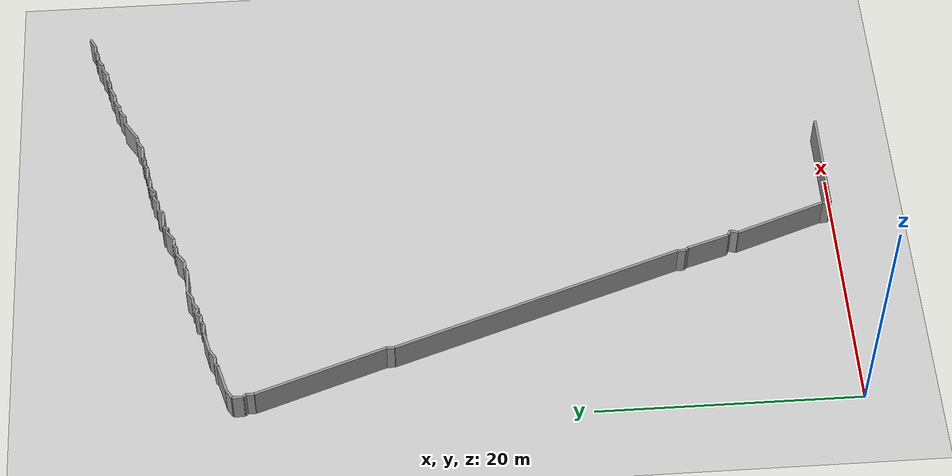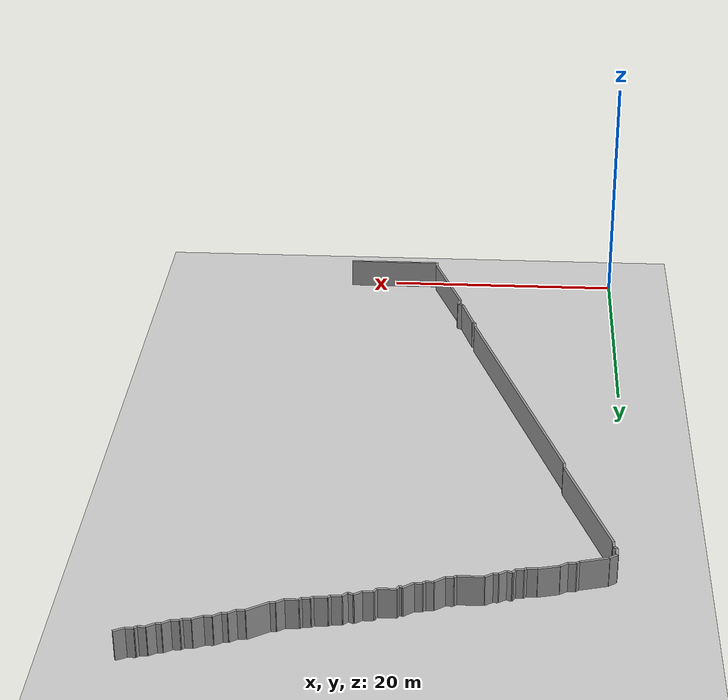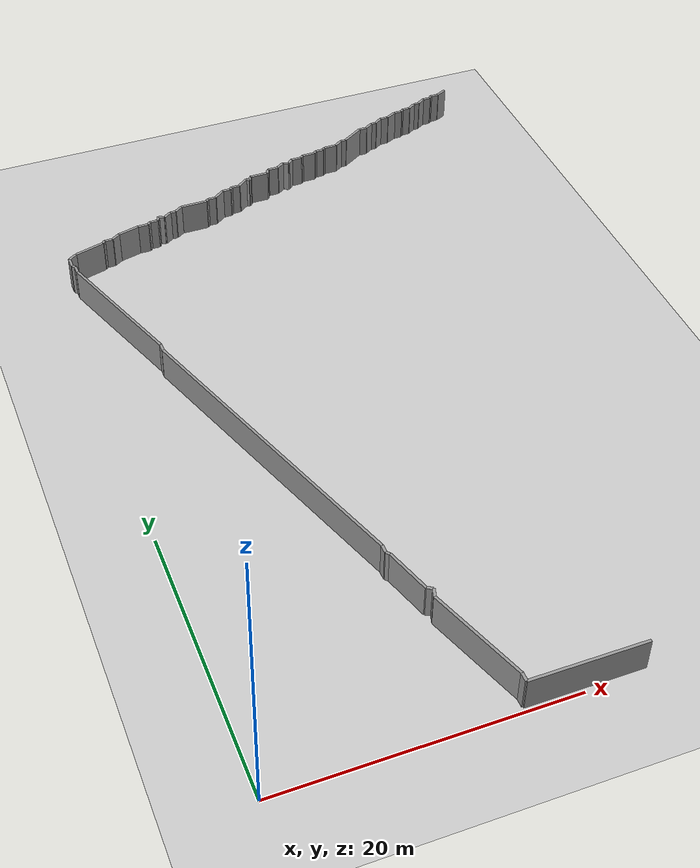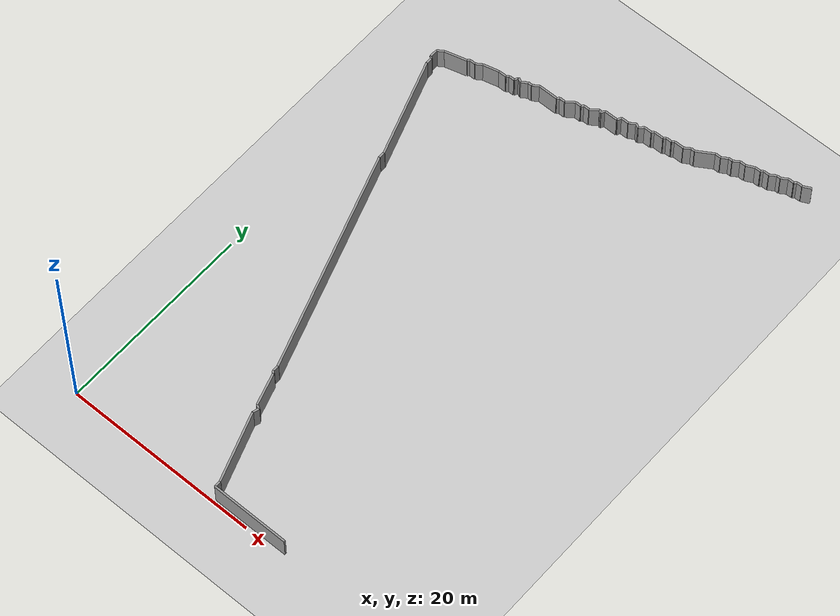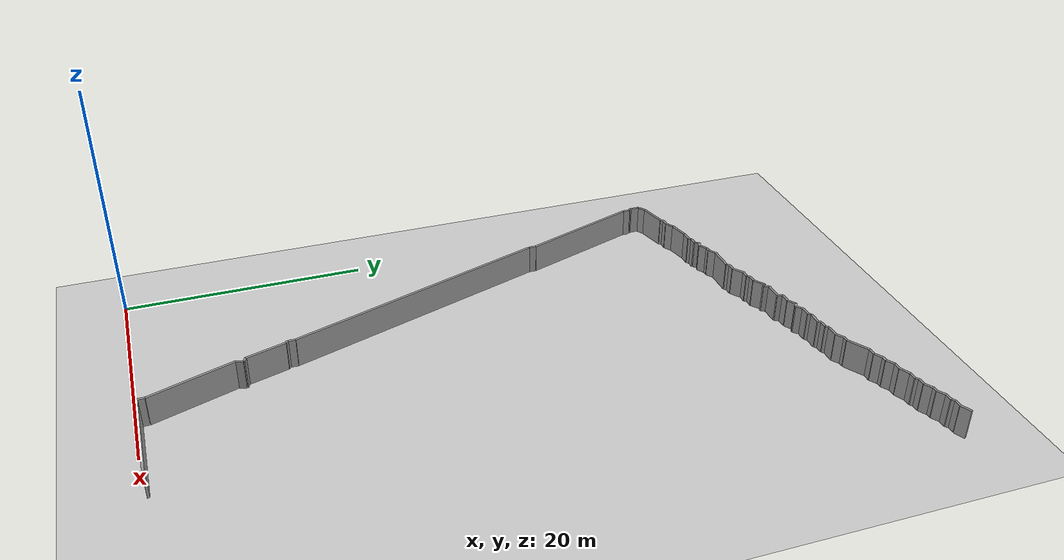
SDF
<sdf version="1.4">
 <world name="1_wall">
  <model name="ground_plane">
   <static>1</static>
   <link name="link">
    <collision name="collision">
     <geometry><plane><normal>0 0 1</normal><size>1000 1000</size></plane></geometry>
     <surface><friction><ode><mu>100</mu><mu2>50</mu2></ode></friction></surface>
    </collision>
    <visual name="visual">
     <cast_shadows>0</cast_shadows>
     <geometry><plane><normal>0 0 1</normal><size>10000 10000</size></plane></geometry>
     <material>
      <script><uri>file://media/materials/scripts/gazebo.material</uri><name>Gazebo/Grey</name></script>
     </material>
    </visual>
    <velocity_decay><linear>0</linear><angular>0</angular></velocity_decay>
   </link>
  </model>
  <model name="Wall_0">
   <static>1</static>
   <link name="Wall_0">
    <collision name="Wall_Collision_0">
     <geometry><box><size>8.0 0.2 2.5</size></box></geometry>
     <pose>0 0 1.25 0 -0 0</pose>
    </collision>
    <visual name="Wall_Visual_0">
     <pose>0 0 1.25 0 -0 0</pose>
     <geometry><box><size>8.0 0.2 2.5</size></box></geometry>
     <material>
      <script><uri>file://media/materials/scripts/gazebo.material</uri><name>Gazebo/Grey</name></script>
     </material>
    </visual>
    <velocity_decay><linear>0</linear><angular>0</angular></velocity_decay>
    <pose>20.2 0.4 0 0 0 3.14159265359</pose>
   </link>
  </model>
  <model name="Wall_1">
   <static>1</static>
   <link name="Wall_1">
    <collision name="Wall_Collision_1">
     <geometry><box><size>0.6 0.2 2.5</size></box></geometry>
     <pose>0 0 1.25 0 -0 0</pose>
    </collision>
    <visual name="Wall_Visual_1">
     <pose>0 0 1.25 0 -0 0</pose>
     <geometry><box><size>0.6 0.2 2.5</size></box></geometry>
     <material>
      <script><uri>file://media/materials/scripts/gazebo.material</uri><name>Gazebo/Grey</name></script>
     </material>
    </visual>
    <velocity_decay><linear>0</linear><angular>0</angular></velocity_decay>
    <pose>16.2 0.7 0 0 0 1.57079632679</pose>
   </link>
  </model>
  <model name="Wall_2">
   <static>1</static>
   <link name="Wall_2">
    <collision name="Wall_Collision_2">
     <geometry><box><size>7.21110255093 0.2 2.5</size></box></geometry>
     <pose>0 0 1.25 0 -0 0</pose>
    </collision>
    <visual name="Wall_Visual_2">
     <pose>0 0 1.25 0 -0 0</pose>
     <geometry><box><size>7.21110255093 0.2 2.5</size></box></geometry>
     <material>
      <script><uri>file://media/materials/scripts/gazebo.material</uri><name>Gazebo/Grey</name></script>
     </material>
    </visual>
    <velocity_decay><linear>0</linear><angular>0</angular></velocity_decay>
    <pose>15.0 4.4 0 0 0 1.91008894125</pose>
   </link>
  </model>
  <model name="Wall_3">
   <static>1</static>
   <link name="Wall_3">
    <collision name="Wall_Collision_3">
     <geometry><box><size>0.632455532034 0.2 2.5</size></box></geometry>
     <pose>0 0 1.25 0 -0 0</pose>
    </collision>
    <visual name="Wall_Visual_3">
     <pose>0 0 1.25 0 -0 0</pose>
     <geometry><box><size>0.632455532034 0.2 2.5</size></box></geometry>
     <material>
      <script><uri>file://media/materials/scripts/gazebo.material</uri><name>Gazebo/Grey</name></script>
     </material>
    </visual>
    <velocity_decay><linear>0</linear><angular>0</angular></velocity_decay>
    <pose>13.9 8.1 0 0 0 1.2490457724</pose>
   </link>
  </model>
  <model name="Wall_4">
   <static>1</static>
   <link name="Wall_4">
    <collision name="Wall_Collision_4">
     <geometry><box><size>0.4472135955 0.2 2.5</size></box></geometry>
     <pose>0 0 1.25 0 -0 0</pose>
    </collision>
    <visual name="Wall_Visual_4">
     <pose>0 0 1.25 0 -0 0</pose>
     <geometry><box><size>0.4472135955 0.2 2.5</size></box></geometry>
     <material>
      <script><uri>file://media/materials/scripts/gazebo.material</uri><name>Gazebo/Grey</name></script>
     </material>
    </visual>
    <velocity_decay><linear>0</linear><angular>0</angular></velocity_decay>
    <pose>13.8 8.5 0 0 0 2.67794504459</pose>
   </link>
  </model>
  <model name="Wall_5">
   <static>1</static>
   <link name="Wall_5">
    <collision name="Wall_Collision_5">
     <geometry><box><size>3.35261092285 0.2 2.5</size></box></geometry>
     <pose>0 0 1.25 0 -0 0</pose>
    </collision>
    <visual name="Wall_Visual_5">
     <pose>0 0 1.25 0 -0 0</pose>
     <geometry><box><size>3.35261092285 0.2 2.5</size></box></geometry>
     <material>
      <script><uri>file://media/materials/scripts/gazebo.material</uri><name>Gazebo/Grey</name></script>
     </material>
    </visual>
    <velocity_decay><linear>0</linear><angular>0</angular></velocity_decay>
    <pose>13.1 10.2 0 0 0 1.87368119517</pose>
   </link>
  </model>
  <model name="Wall_6">
   <static>1</static>
   <link name="Wall_6">
    <collision name="Wall_Collision_6">
     <geometry><box><size>0.282842712475 0.2 2.5</size></box></geometry>
     <pose>0 0 1.25 0 -0 0</pose>
    </collision>
    <visual name="Wall_Visual_6">
     <pose>0 0 1.25 0 -0 0</pose>
     <geometry><box><size>0.282842712475 0.2 2.5</size></box></geometry>
     <material>
      <script><uri>file://media/materials/scripts/gazebo.material</uri><name>Gazebo/Grey</name></script>
     </material>
    </visual>
    <velocity_decay><linear>0</linear><angular>0</angular></velocity_decay>
    <pose>12.5 11.9 0 0 0 2.35619449019</pose>
   </link>
  </model>
  <model name="Wall_7">
   <static>1</static>
   <link name="Wall_7">
    <collision name="Wall_Collision_7">
     <geometry><box><size>0.6 0.2 2.5</size></box></geometry>
     <pose>0 0 1.25 0 -0 0</pose>
    </collision>
    <visual name="Wall_Visual_7">
     <pose>0 0 1.25 0 -0 0</pose>
     <geometry><box><size>0.6 0.2 2.5</size></box></geometry>
     <material>
      <script><uri>file://media/materials/scripts/gazebo.material</uri><name>Gazebo/Grey</name></script>
     </material>
    </visual>
    <velocity_decay><linear>0</linear><angular>0</angular></velocity_decay>
    <pose>12.4 12.3 0 0 0 1.57079632679</pose>
   </link>
  </model>
  <model name="Wall_8">
   <static>1</static>
   <link name="Wall_8">
    <collision name="Wall_Collision_8">
     <geometry><box><size>23.0217288664 0.2 2.5</size></box></geometry>
     <pose>0 0 1.25 0 -0 0</pose>
    </collision>
    <visual name="Wall_Visual_8">
     <pose>0 0 1.25 0 -0 0</pose>
     <geometry><box><size>23.0217288664 0.2 2.5</size></box></geometry>
     <material>
      <script><uri>file://media/materials/scripts/gazebo.material</uri><name>Gazebo/Grey</name></script>
     </material>
    </visual>
    <velocity_decay><linear>0</linear><angular>0</angular></velocity_decay>
    <pose>8.7 23.5 0 0 0 1.89804133139</pose>
   </link>
  </model>
  <model name="Wall_9">
   <static>1</static>
   <link name="Wall_9">
    <collision name="Wall_Collision_9">
     <geometry><box><size>0.6 0.2 2.5</size></box></geometry>
     <pose>0 0 1.25 0 -0 0</pose>
    </collision>
    <visual name="Wall_Visual_9">
     <pose>0 0 1.25 0 -0 0</pose>
     <geometry><box><size>0.6 0.2 2.5</size></box></geometry>
     <material>
      <script><uri>file://media/materials/scripts/gazebo.material</uri><name>Gazebo/Grey</name></script>
     </material>
    </visual>
    <velocity_decay><linear>0</linear><angular>0</angular></velocity_decay>
    <pose>5.0 34.7 0 0 0 1.57079632679</pose>
   </link>
  </model>
  <model name="Wall_10">
   <static>1</static>
   <link name="Wall_10">
    <collision name="Wall_Collision_10">
     <geometry><box><size>10.3730419839 0.2 2.5</size></box></geometry>
     <pose>0 0 1.25 0 -0 0</pose>
    </collision>
    <visual name="Wall_Visual_10">
     <pose>0 0 1.25 0 -0 0</pose>
     <geometry><box><size>10.3730419839 0.2 2.5</size></box></geometry>
     <material>
      <script><uri>file://media/materials/scripts/gazebo.material</uri><name>Gazebo/Grey</name></script>
     </material>
    </visual>
    <velocity_decay><linear>0</linear><angular>0</angular></velocity_decay>
    <pose>3.3 39.9 0 0 0 1.90474139864</pose>
   </link>
  </model>
  <model name="Wall_11">
   <static>1</static>
   <link name="Wall_11">
    <collision name="Wall_Collision_11">
     <geometry><box><size>0.6 0.2 2.5</size></box></geometry>
     <pose>0 0 1.25 0 -0 0</pose>
    </collision>
    <visual name="Wall_Visual_11">
     <pose>0 0 1.25 0 -0 0</pose>
     <geometry><box><size>0.6 0.2 2.5</size></box></geometry>
     <material>
      <script><uri>file://media/materials/scripts/gazebo.material</uri><name>Gazebo/Grey</name></script>
     </material>
    </visual>
    <velocity_decay><linear>0</linear><angular>0</angular></velocity_decay>
    <pose>1.6 45.1 0 0 0 1.57079632679</pose>
   </link>
  </model>
  <model name="Wall_12">
   <static>1</static>
   <link name="Wall_12">
    <collision name="Wall_Collision_12">
     <geometry><box><size>0.282842712475 0.2 2.5</size></box></geometry>
     <pose>0 0 1.25 0 -0 0</pose>
    </collision>
    <visual name="Wall_Visual_12">
     <pose>0 0 1.25 0 -0 0</pose>
     <geometry><box><size>0.282842712475 0.2 2.5</size></box></geometry>
     <material>
      <script><uri>file://media/materials/scripts/gazebo.material</uri><name>Gazebo/Grey</name></script>
     </material>
    </visual>
    <velocity_decay><linear>0</linear><angular>0</angular></velocity_decay>
    <pose>1.5 45.5 0 0 0 2.35619449019</pose>
   </link>
  </model>
  <model name="Wall_13">
   <static>1</static>
   <link name="Wall_13">
    <collision name="Wall_Collision_13">
     <geometry><box><size>0.8 0.2 2.5</size></box></geometry>
     <pose>0 0 1.25 0 -0 0</pose>
    </collision>
    <visual name="Wall_Visual_13">
     <pose>0 0 1.25 0 -0 0</pose>
     <geometry><box><size>0.8 0.2 2.5</size></box></geometry>
     <material>
      <script><uri>file://media/materials/scripts/gazebo.material</uri><name>Gazebo/Grey</name></script>
     </material>
    </visual>
    <velocity_decay><linear>0</linear><angular>0</angular></velocity_decay>
    <pose>1.4 46.0 0 0 0 1.57079632679</pose>
   </link>
  </model>
  <model name="Wall_14">
   <static>1</static>
   <link name="Wall_14">
    <collision name="Wall_Collision_14">
     <geometry><box><size>0.721110255093 0.2 2.5</size></box></geometry>
     <pose>0 0 1.25 0 -0 0</pose>
    </collision>
    <visual name="Wall_Visual_14">
     <pose>0 0 1.25 0 -0 0</pose>
     <geometry><box><size>0.721110255093 0.2 2.5</size></box></geometry>
     <material>
      <script><uri>file://media/materials/scripts/gazebo.material</uri><name>Gazebo/Grey</name></script>
     </material>
    </visual>
    <velocity_decay><linear>0</linear><angular>0</angular></velocity_decay>
    <pose>1.7 46.6 0 0 0 0.588002603548</pose>
   </link>
  </model>
  <model name="Wall_15">
   <static>1</static>
   <link name="Wall_15">
    <collision name="Wall_Collision_15">
     <geometry><box><size>2.2803508502 0.2 2.5</size></box></geometry>
     <pose>0 0 1.25 0 -0 0</pose>
    </collision>
    <visual name="Wall_Visual_15">
     <pose>0 0 1.25 0 -0 0</pose>
     <geometry><box><size>2.2803508502 0.2 2.5</size></box></geometry>
     <material>
      <script><uri>file://media/materials/scripts/gazebo.material</uri><name>Gazebo/Grey</name></script>
     </material>
    </visual>
    <velocity_decay><linear>0</linear><angular>0</angular></velocity_decay>
    <pose>3.1 47.1 0 0 0 0.266252049151</pose>
   </link>
  </model>
  <model name="Wall_16">
   <static>1</static>
   <link name="Wall_16">
    <collision name="Wall_Collision_16">
     <geometry><box><size>0.282842712475 0.2 2.5</size></box></geometry>
     <pose>0 0 1.25 0 -0 0</pose>
    </collision>
    <visual name="Wall_Visual_16">
     <pose>0 0 1.25 0 -0 0</pose>
     <geometry><box><size>0.282842712475 0.2 2.5</size></box></geometry>
     <material>
      <script><uri>file://media/materials/scripts/gazebo.material</uri><name>Gazebo/Grey</name></script>
     </material>
    </visual>
    <velocity_decay><linear>0</linear><angular>0</angular></velocity_decay>
    <pose>4.3 47.5 0 0 0 0.785398163397</pose>
   </link>
  </model>
  <model name="Wall_17">
   <static>1</static>
   <link name="Wall_17">
    <collision name="Wall_Collision_17">
     <geometry><box><size>0.6 0.2 2.5</size></box></geometry>
     <pose>0 0 1.25 0 -0 0</pose>
    </collision>
    <visual name="Wall_Visual_17">
     <pose>0 0 1.25 0 -0 0</pose>
     <geometry><box><size>0.6 0.2 2.5</size></box></geometry>
     <material>
      <script><uri>file://media/materials/scripts/gazebo.material</uri><name>Gazebo/Grey</name></script>
     </material>
    </visual>
    <velocity_decay><linear>0</linear><angular>0</angular></velocity_decay>
    <pose>4.7 47.6 0 0 0 0.0</pose>
   </link>
  </model>
  <model name="Wall_18">
   <static>1</static>
   <link name="Wall_18">
    <collision name="Wall_Collision_18">
     <geometry><box><size>0.721110255093 0.2 2.5</size></box></geometry>
     <pose>0 0 1.25 0 -0 0</pose>
    </collision>
    <visual name="Wall_Visual_18">
     <pose>0 0 1.25 0 -0 0</pose>
     <geometry><box><size>0.721110255093 0.2 2.5</size></box></geometry>
     <material>
      <script><uri>file://media/materials/scripts/gazebo.material</uri><name>Gazebo/Grey</name></script>
     </material>
    </visual>
    <velocity_decay><linear>0</linear><angular>0</angular></velocity_decay>
    <pose>5.3 47.8 0 0 0 0.588002603548</pose>
   </link>
  </model>
  <model name="Wall_19">
   <static>1</static>
   <link name="Wall_19">
    <collision name="Wall_Collision_19">
     <geometry><box><size>1.64924225025 0.2 2.5</size></box></geometry>
     <pose>0 0 1.25 0 -0 0</pose>
    </collision>
    <visual name="Wall_Visual_19">
     <pose>0 0 1.25 0 -0 0</pose>
     <geometry><box><size>1.64924225025 0.2 2.5</size></box></geometry>
     <material>
      <script><uri>file://media/materials/scripts/gazebo.material</uri><name>Gazebo/Grey</name></script>
     </material>
    </visual>
    <velocity_decay><linear>0</linear><angular>0</angular></velocity_decay>
    <pose>6.4 48.2 0 0 0 0.244978663127</pose>
   </link>
  </model>
  <model name="Wall_20">
   <static>1</static>
   <link name="Wall_20">
    <collision name="Wall_Collision_20">
     <geometry><box><size>0.8 0.2 2.5</size></box></geometry>
     <pose>0 0 1.25 0 -0 0</pose>
    </collision>
    <visual name="Wall_Visual_20">
     <pose>0 0 1.25 0 -0 0</pose>
     <geometry><box><size>0.8 0.2 2.5</size></box></geometry>
     <material>
      <script><uri>file://media/materials/scripts/gazebo.material</uri><name>Gazebo/Grey</name></script>
     </material>
    </visual>
    <velocity_decay><linear>0</linear><angular>0</angular></velocity_decay>
    <pose>7.6 48.4 0 0 0 0.0</pose>
   </link>
  </model>
  <model name="Wall_21">
   <static>1</static>
   <link name="Wall_21">
    <collision name="Wall_Collision_21">
     <geometry><box><size>0.282842712475 0.2 2.5</size></box></geometry>
     <pose>0 0 1.25 0 -0 0</pose>
    </collision>
    <visual name="Wall_Visual_21">
     <pose>0 0 1.25 0 -0 0</pose>
     <geometry><box><size>0.282842712475 0.2 2.5</size></box></geometry>
     <material>
      <script><uri>file://media/materials/scripts/gazebo.material</uri><name>Gazebo/Grey</name></script>
     </material>
    </visual>
    <velocity_decay><linear>0</linear><angular>0</angular></velocity_decay>
    <pose>8.1 48.5 0 0 0 0.785398163397</pose>
   </link>
  </model>
  <model name="Wall_22">
   <static>1</static>
   <link name="Wall_22">
    <collision name="Wall_Collision_22">
     <geometry><box><size>0.6 0.2 2.5</size></box></geometry>
     <pose>0 0 1.25 0 -0 0</pose>
    </collision>
    <visual name="Wall_Visual_22">
     <pose>0 0 1.25 0 -0 0</pose>
     <geometry><box><size>0.6 0.2 2.5</size></box></geometry>
     <material>
      <script><uri>file://media/materials/scripts/gazebo.material</uri><name>Gazebo/Grey</name></script>
     </material>
    </visual>
    <velocity_decay><linear>0</linear><angular>0</angular></velocity_decay>
    <pose>8.5 48.6 0 0 0 0.0</pose>
   </link>
  </model>
  <model name="Wall_23">
   <static>1</static>
   <link name="Wall_23">
    <collision name="Wall_Collision_23">
     <geometry><box><size>0.4472135955 0.2 2.5</size></box></geometry>
     <pose>0 0 1.25 0 -0 0</pose>
    </collision>
    <visual name="Wall_Visual_23">
     <pose>0 0 1.25 0 -0 0</pose>
     <geometry><box><size>0.4472135955 0.2 2.5</size></box></geometry>
     <material>
      <script><uri>file://media/materials/scripts/gazebo.material</uri><name>Gazebo/Grey</name></script>
     </material>
    </visual>
    <velocity_decay><linear>0</linear><angular>0</angular></velocity_decay>
    <pose>8.9 48.8 0 0 0 1.10714871779</pose>
   </link>
  </model>
  <model name="Wall_24">
   <static>1</static>
   <link name="Wall_24">
    <collision name="Wall_Collision_24">
     <geometry><box><size>0.4472135955 0.2 2.5</size></box></geometry>
     <pose>0 0 1.25 0 -0 0</pose>
    </collision>
    <visual name="Wall_Visual_24">
     <pose>0 0 1.25 0 -0 0</pose>
     <geometry><box><size>0.4472135955 0.2 2.5</size></box></geometry>
     <material>
      <script><uri>file://media/materials/scripts/gazebo.material</uri><name>Gazebo/Grey</name></script>
     </material>
    </visual>
    <velocity_decay><linear>0</linear><angular>0</angular></velocity_decay>
    <pose>9.2 48.9 0 0 0 -0.463647609001</pose>
   </link>
  </model>
  <model name="Wall_25">
   <static>1</static>
   <link name="Wall_25">
    <collision name="Wall_Collision_25">
     <geometry><box><size>0.721110255093 0.2 2.5</size></box></geometry>
     <pose>0 0 1.25 0 -0 0</pose>
    </collision>
    <visual name="Wall_Visual_25">
     <pose>0 0 1.25 0 -0 0</pose>
     <geometry><box><size>0.721110255093 0.2 2.5</size></box></geometry>
     <material>
      <script><uri>file://media/materials/scripts/gazebo.material</uri><name>Gazebo/Grey</name></script>
     </material>
    </visual>
    <velocity_decay><linear>0</linear><angular>0</angular></velocity_decay>
    <pose>9.7 49.0 0 0 0 0.588002603548</pose>
   </link>
  </model>
  <model name="Wall_26">
   <static>1</static>
   <link name="Wall_26">
    <collision name="Wall_Collision_26">
     <geometry><box><size>0.4 0.2 2.5</size></box></geometry>
     <pose>0 0 1.25 0 -0 0</pose>
    </collision>
    <visual name="Wall_Visual_26">
     <pose>0 0 1.25 0 -0 0</pose>
     <geometry><box><size>0.4 0.2 2.5</size></box></geometry>
     <material>
      <script><uri>file://media/materials/scripts/gazebo.material</uri><name>Gazebo/Grey</name></script>
     </material>
    </visual>
    <velocity_decay><linear>0</linear><angular>0</angular></velocity_decay>
    <pose>10.2 49.2 0 0 0 0.0</pose>
   </link>
  </model>
  <model name="Wall_27">
   <static>1</static>
   <link name="Wall_27">
    <collision name="Wall_Collision_27">
     <geometry><box><size>0.721110255093 0.2 2.5</size></box></geometry>
     <pose>0 0 1.25 0 -0 0</pose>
    </collision>
    <visual name="Wall_Visual_27">
     <pose>0 0 1.25 0 -0 0</pose>
     <geometry><box><size>0.721110255093 0.2 2.5</size></box></geometry>
     <material>
      <script><uri>file://media/materials/scripts/gazebo.material</uri><name>Gazebo/Grey</name></script>
     </material>
    </visual>
    <velocity_decay><linear>0</linear><angular>0</angular></velocity_decay>
    <pose>10.7 49.4 0 0 0 0.588002603548</pose>
   </link>
  </model>
  <model name="Wall_28">
   <static>1</static>
   <link name="Wall_28">
    <collision name="Wall_Collision_28">
     <geometry><box><size>2.0 0.2 2.5</size></box></geometry>
     <pose>0 0 1.25 0 -0 0</pose>
    </collision>
    <visual name="Wall_Visual_28">
     <pose>0 0 1.25 0 -0 0</pose>
     <geometry><box><size>2.0 0.2 2.5</size></box></geometry>
     <material>
      <script><uri>file://media/materials/scripts/gazebo.material</uri><name>Gazebo/Grey</name></script>
     </material>
    </visual>
    <velocity_decay><linear>0</linear><angular>0</angular></velocity_decay>
    <pose>12.0 49.6 0 0 0 0.0</pose>
   </link>
  </model>
  <model name="Wall_29">
   <static>1</static>
   <link name="Wall_29">
    <collision name="Wall_Collision_29">
     <geometry><box><size>0.282842712475 0.2 2.5</size></box></geometry>
     <pose>0 0 1.25 0 -0 0</pose>
    </collision>
    <visual name="Wall_Visual_29">
     <pose>0 0 1.25 0 -0 0</pose>
     <geometry><box><size>0.282842712475 0.2 2.5</size></box></geometry>
     <material>
      <script><uri>file://media/materials/scripts/gazebo.material</uri><name>Gazebo/Grey</name></script>
     </material>
    </visual>
    <velocity_decay><linear>0</linear><angular>0</angular></velocity_decay>
    <pose>13.1 49.7 0 0 0 0.785398163397</pose>
   </link>
  </model>
  <model name="Wall_30">
   <static>1</static>
   <link name="Wall_30">
    <collision name="Wall_Collision_30">
     <geometry><box><size>0.6 0.2 2.5</size></box></geometry>
     <pose>0 0 1.25 0 -0 0</pose>
    </collision>
    <visual name="Wall_Visual_30">
     <pose>0 0 1.25 0 -0 0</pose>
     <geometry><box><size>0.6 0.2 2.5</size></box></geometry>
     <material>
      <script><uri>file://media/materials/scripts/gazebo.material</uri><name>Gazebo/Grey</name></script>
     </material>
    </visual>
    <velocity_decay><linear>0</linear><angular>0</angular></velocity_decay>
    <pose>13.5 49.8 0 0 0 0.0</pose>
   </link>
  </model>
  <model name="Wall_31">
   <static>1</static>
   <link name="Wall_31">
    <collision name="Wall_Collision_31">
     <geometry><box><size>1.0 0.2 2.5</size></box></geometry>
     <pose>0 0 1.25 0 -0 0</pose>
    </collision>
    <visual name="Wall_Visual_31">
     <pose>0 0 1.25 0 -0 0</pose>
     <geometry><box><size>1.0 0.2 2.5</size></box></geometry>
     <material>
      <script><uri>file://media/materials/scripts/gazebo.material</uri><name>Gazebo/Grey</name></script>
     </material>
    </visual>
    <velocity_decay><linear>0</linear><angular>0</angular></velocity_decay>
    <pose>14.2 50.1 0 0 0 0.643501108793</pose>
   </link>
  </model>
  <model name="Wall_32">
   <static>1</static>
   <link name="Wall_32">
    <collision name="Wall_Collision_32">
     <geometry><box><size>0.6 0.2 2.5</size></box></geometry>
     <pose>0 0 1.25 0 -0 0</pose>
    </collision>
    <visual name="Wall_Visual_32">
     <pose>0 0 1.25 0 -0 0</pose>
     <geometry><box><size>0.6 0.2 2.5</size></box></geometry>
     <material>
      <script><uri>file://media/materials/scripts/gazebo.material</uri><name>Gazebo/Grey</name></script>
     </material>
    </visual>
    <velocity_decay><linear>0</linear><angular>0</angular></velocity_decay>
    <pose>14.9 50.4 0 0 0 0.0</pose>
   </link>
  </model>
  <model name="Wall_33">
   <static>1</static>
   <link name="Wall_33">
    <collision name="Wall_Collision_33">
     <geometry><box><size>0.282842712475 0.2 2.5</size></box></geometry>
     <pose>0 0 1.25 0 -0 0</pose>
    </collision>
    <visual name="Wall_Visual_33">
     <pose>0 0 1.25 0 -0 0</pose>
     <geometry><box><size>0.282842712475 0.2 2.5</size></box></geometry>
     <material>
      <script><uri>file://media/materials/scripts/gazebo.material</uri><name>Gazebo/Grey</name></script>
     </material>
    </visual>
    <velocity_decay><linear>0</linear><angular>0</angular></velocity_decay>
    <pose>15.3 50.5 0 0 0 0.785398163397</pose>
   </link>
  </model>
  <model name="Wall_34">
   <static>1</static>
   <link name="Wall_34">
    <collision name="Wall_Collision_34">
     <geometry><box><size>0.6 0.2 2.5</size></box></geometry>
     <pose>0 0 1.25 0 -0 0</pose>
    </collision>
    <visual name="Wall_Visual_34">
     <pose>0 0 1.25 0 -0 0</pose>
     <geometry><box><size>0.6 0.2 2.5</size></box></geometry>
     <material>
      <script><uri>file://media/materials/scripts/gazebo.material</uri><name>Gazebo/Grey</name></script>
     </material>
    </visual>
    <velocity_decay><linear>0</linear><angular>0</angular></velocity_decay>
    <pose>15.7 50.6 0 0 0 0.0</pose>
   </link>
  </model>
  <model name="Wall_35">
   <static>1</static>
   <link name="Wall_35">
    <collision name="Wall_Collision_35">
     <geometry><box><size>1.0 0.2 2.5</size></box></geometry>
     <pose>0 0 1.25 0 -0 0</pose>
    </collision>
    <visual name="Wall_Visual_35">
     <pose>0 0 1.25 0 -0 0</pose>
     <geometry><box><size>1.0 0.2 2.5</size></box></geometry>
     <material>
      <script><uri>file://media/materials/scripts/gazebo.material</uri><name>Gazebo/Grey</name></script>
     </material>
    </visual>
    <velocity_decay><linear>0</linear><angular>0</angular></velocity_decay>
    <pose>16.4 50.9 0 0 0 0.643501108793</pose>
   </link>
  </model>
  <model name="Wall_36">
   <static>1</static>
   <link name="Wall_36">
    <collision name="Wall_Collision_36">
     <geometry><box><size>0.282842712475 0.2 2.5</size></box></geometry>
     <pose>0 0 1.25 0 -0 0</pose>
    </collision>
    <visual name="Wall_Visual_36">
     <pose>0 0 1.25 0 -0 0</pose>
     <geometry><box><size>0.282842712475 0.2 2.5</size></box></geometry>
     <material>
      <script><uri>file://media/materials/scripts/gazebo.material</uri><name>Gazebo/Grey</name></script>
     </material>
    </visual>
    <velocity_decay><linear>0</linear><angular>0</angular></velocity_decay>
    <pose>16.9 51.1 0 0 0 -0.785398163397</pose>
   </link>
  </model>
  <model name="Wall_37">
   <static>1</static>
   <link name="Wall_37">
    <collision name="Wall_Collision_37">
     <geometry><box><size>0.4472135955 0.2 2.5</size></box></geometry>
     <pose>0 0 1.25 0 -0 0</pose>
    </collision>
    <visual name="Wall_Visual_37">
     <pose>0 0 1.25 0 -0 0</pose>
     <geometry><box><size>0.4472135955 0.2 2.5</size></box></geometry>
     <material>
      <script><uri>file://media/materials/scripts/gazebo.material</uri><name>Gazebo/Grey</name></script>
     </material>
    </visual>
    <velocity_decay><linear>0</linear><angular>0</angular></velocity_decay>
    <pose>17.1 51.2 0 0 0 1.10714871779</pose>
   </link>
  </model>
  <model name="Wall_38">
   <static>1</static>
   <link name="Wall_38">
    <collision name="Wall_Collision_38">
     <geometry><box><size>1.4 0.2 2.5</size></box></geometry>
     <pose>0 0 1.25 0 -0 0</pose>
    </collision>
    <visual name="Wall_Visual_38">
     <pose>0 0 1.25 0 -0 0</pose>
     <geometry><box><size>1.4 0.2 2.5</size></box></geometry>
     <material>
      <script><uri>file://media/materials/scripts/gazebo.material</uri><name>Gazebo/Grey</name></script>
     </material>
    </visual>
    <velocity_decay><linear>0</linear><angular>0</angular></velocity_decay>
    <pose>17.9 51.4 0 0 0 0.0</pose>
   </link>
  </model>
  <model name="Wall_39">
   <static>1</static>
   <link name="Wall_39">
    <collision name="Wall_Collision_39">
     <geometry><box><size>0.4472135955 0.2 2.5</size></box></geometry>
     <pose>0 0 1.25 0 -0 0</pose>
    </collision>
    <visual name="Wall_Visual_39">
     <pose>0 0 1.25 0 -0 0</pose>
     <geometry><box><size>0.4472135955 0.2 2.5</size></box></geometry>
     <material>
      <script><uri>file://media/materials/scripts/gazebo.material</uri><name>Gazebo/Grey</name></script>
     </material>
    </visual>
    <velocity_decay><linear>0</linear><angular>0</angular></velocity_decay>
    <pose>18.7 51.6 0 0 0 1.10714871779</pose>
   </link>
  </model>
  <model name="Wall_40">
   <static>1</static>
   <link name="Wall_40">
    <collision name="Wall_Collision_40">
     <geometry><box><size>0.8 0.2 2.5</size></box></geometry>
     <pose>0 0 1.25 0 -0 0</pose>
    </collision>
    <visual name="Wall_Visual_40">
     <pose>0 0 1.25 0 -0 0</pose>
     <geometry><box><size>0.8 0.2 2.5</size></box></geometry>
     <material>
      <script><uri>file://media/materials/scripts/gazebo.material</uri><name>Gazebo/Grey</name></script>
     </material>
    </visual>
    <velocity_decay><linear>0</linear><angular>0</angular></velocity_decay>
    <pose>19.2 51.8 0 0 0 0.0</pose>
   </link>
  </model>
  <model name="Wall_41">
   <static>1</static>
   <link name="Wall_41">
    <collision name="Wall_Collision_41">
     <geometry><box><size>0.721110255093 0.2 2.5</size></box></geometry>
     <pose>0 0 1.25 0 -0 0</pose>
    </collision>
    <visual name="Wall_Visual_41">
     <pose>0 0 1.25 0 -0 0</pose>
     <geometry><box><size>0.721110255093 0.2 2.5</size></box></geometry>
     <material>
      <script><uri>file://media/materials/scripts/gazebo.material</uri><name>Gazebo/Grey</name></script>
     </material>
    </visual>
    <velocity_decay><linear>0</linear><angular>0</angular></velocity_decay>
    <pose>19.9 52.0 0 0 0 0.588002603548</pose>
   </link>
  </model>
  <model name="Wall_42">
   <static>1</static>
   <link name="Wall_42">
    <collision name="Wall_Collision_42">
     <geometry><box><size>0.4472135955 0.2 2.5</size></box></geometry>
     <pose>0 0 1.25 0 -0 0</pose>
    </collision>
    <visual name="Wall_Visual_42">
     <pose>0 0 1.25 0 -0 0</pose>
     <geometry><box><size>0.4472135955 0.2 2.5</size></box></geometry>
     <material>
      <script><uri>file://media/materials/scripts/gazebo.material</uri><name>Gazebo/Grey</name></script>
     </material>
    </visual>
    <velocity_decay><linear>0</linear><angular>0</angular></velocity_decay>
    <pose>20.4 52.1 0 0 0 -0.463647609001</pose>
   </link>
  </model>
  <model name="Wall_43">
   <static>1</static>
   <link name="Wall_43">
    <collision name="Wall_Collision_43">
     <geometry><box><size>0.565685424949 0.2 2.5</size></box></geometry>
     <pose>0 0 1.25 0 -0 0</pose>
    </collision>
    <visual name="Wall_Visual_43">
     <pose>0 0 1.25 0 -0 0</pose>
     <geometry><box><size>0.565685424949 0.2 2.5</size></box></geometry>
     <material>
      <script><uri>file://media/materials/scripts/gazebo.material</uri><name>Gazebo/Grey</name></script>
     </material>
    </visual>
    <velocity_decay><linear>0</linear><angular>0</angular></velocity_decay>
    <pose>20.8 52.2 0 0 0 0.785398163397</pose>
   </link>
  </model>
  <model name="Wall_44">
   <static>1</static>
   <link name="Wall_44">
    <collision name="Wall_Collision_44">
     <geometry><box><size>0.8 0.2 2.5</size></box></geometry>
     <pose>0 0 1.25 0 -0 0</pose>
    </collision>
    <visual name="Wall_Visual_44">
     <pose>0 0 1.25 0 -0 0</pose>
     <geometry><box><size>0.8 0.2 2.5</size></box></geometry>
     <material>
      <script><uri>file://media/materials/scripts/gazebo.material</uri><name>Gazebo/Grey</name></script>
     </material>
    </visual>
    <velocity_decay><linear>0</linear><angular>0</angular></velocity_decay>
    <pose>21.4 52.4 0 0 0 0.0</pose>
   </link>
  </model>
  <model name="Wall_45">
   <static>1</static>
   <link name="Wall_45">
    <collision name="Wall_Collision_45">
     <geometry><box><size>0.282842712475 0.2 2.5</size></box></geometry>
     <pose>0 0 1.25 0 -0 0</pose>
    </collision>
    <visual name="Wall_Visual_45">
     <pose>0 0 1.25 0 -0 0</pose>
     <geometry><box><size>0.282842712475 0.2 2.5</size></box></geometry>
     <material>
      <script><uri>file://media/materials/scripts/gazebo.material</uri><name>Gazebo/Grey</name></script>
     </material>
    </visual>
    <velocity_decay><linear>0</linear><angular>0</angular></velocity_decay>
    <pose>21.9 52.5 0 0 0 0.785398163397</pose>
   </link>
  </model>
  <model name="Wall_46">
   <static>1</static>
   <link name="Wall_46">
    <collision name="Wall_Collision_46">
     <geometry><box><size>1.0 0.2 2.5</size></box></geometry>
     <pose>0 0 1.25 0 -0 0</pose>
    </collision>
    <visual name="Wall_Visual_46">
     <pose>0 0 1.25 0 -0 0</pose>
     <geometry><box><size>1.0 0.2 2.5</size></box></geometry>
     <material>
      <script><uri>file://media/materials/scripts/gazebo.material</uri><name>Gazebo/Grey</name></script>
     </material>
    </visual>
    <velocity_decay><linear>0</linear><angular>0</angular></velocity_decay>
    <pose>22.5 52.6 0 0 0 0.0</pose>
   </link>
  </model>
  <model name="Wall_47">
   <static>1</static>
   <link name="Wall_47">
    <collision name="Wall_Collision_47">
     <geometry><box><size>0.282842712475 0.2 2.5</size></box></geometry>
     <pose>0 0 1.25 0 -0 0</pose>
    </collision>
    <visual name="Wall_Visual_47">
     <pose>0 0 1.25 0 -0 0</pose>
     <geometry><box><size>0.282842712475 0.2 2.5</size></box></geometry>
     <material>
      <script><uri>file://media/materials/scripts/gazebo.material</uri><name>Gazebo/Grey</name></script>
     </material>
    </visual>
    <velocity_decay><linear>0</linear><angular>0</angular></velocity_decay>
    <pose>23.1 52.7 0 0 0 0.785398163397</pose>
   </link>
  </model>
  <model name="Wall_48">
   <static>1</static>
   <link name="Wall_48">
    <collision name="Wall_Collision_48">
     <geometry><box><size>0.6 0.2 2.5</size></box></geometry>
     <pose>0 0 1.25 0 -0 0</pose>
    </collision>
    <visual name="Wall_Visual_48">
     <pose>0 0 1.25 0 -0 0</pose>
     <geometry><box><size>0.6 0.2 2.5</size></box></geometry>
     <material>
      <script><uri>file://media/materials/scripts/gazebo.material</uri><name>Gazebo/Grey</name></script>
     </material>
    </visual>
    <velocity_decay><linear>0</linear><angular>0</angular></velocity_decay>
    <pose>23.5 52.8 0 0 0 0.0</pose>
   </link>
  </model>
  <model name="Wall_49">
   <static>1</static>
   <link name="Wall_49">
    <collision name="Wall_Collision_49">
     <geometry><box><size>0.282842712475 0.2 2.5</size></box></geometry>
     <pose>0 0 1.25 0 -0 0</pose>
    </collision>
    <visual name="Wall_Visual_49">
     <pose>0 0 1.25 0 -0 0</pose>
     <geometry><box><size>0.282842712475 0.2 2.5</size></box></geometry>
     <material>
      <script><uri>file://media/materials/scripts/gazebo.material</uri><name>Gazebo/Grey</name></script>
     </material>
    </visual>
    <velocity_decay><linear>0</linear><angular>0</angular></velocity_decay>
    <pose>23.9 52.9 0 0 0 0.785398163397</pose>
   </link>
  </model>
  <model name="Wall_50">
   <static>1</static>
   <link name="Wall_50">
    <collision name="Wall_Collision_50">
     <geometry><box><size>1.0 0.2 2.5</size></box></geometry>
     <pose>0 0 1.25 0 -0 0</pose>
    </collision>
    <visual name="Wall_Visual_50">
     <pose>0 0 1.25 0 -0 0</pose>
     <geometry><box><size>1.0 0.2 2.5</size></box></geometry>
     <material>
      <script><uri>file://media/materials/scripts/gazebo.material</uri><name>Gazebo/Grey</name></script>
     </material>
    </visual>
    <velocity_decay><linear>0</linear><angular>0</angular></velocity_decay>
    <pose>24.5 53.0 0 0 0 0.0</pose>
   </link>
  </model>
  <model name="Wall_51">
   <static>1</static>
   <link name="Wall_51">
    <collision name="Wall_Collision_51">
     <geometry><box><size>0.721110255093 0.2 2.5</size></box></geometry>
     <pose>0 0 1.25 0 -0 0</pose>
    </collision>
    <visual name="Wall_Visual_51">
     <pose>0 0 1.25 0 -0 0</pose>
     <geometry><box><size>0.721110255093 0.2 2.5</size></box></geometry>
     <material>
      <script><uri>file://media/materials/scripts/gazebo.material</uri><name>Gazebo/Grey</name></script>
     </material>
    </visual>
    <velocity_decay><linear>0</linear><angular>0</angular></velocity_decay>
    <pose>25.3 53.2 0 0 0 0.588002603548</pose>
   </link>
  </model>
  <model name="Wall_52">
   <static>1</static>
   <link name="Wall_52">
    <collision name="Wall_Collision_52">
     <geometry><box><size>0.4 0.2 2.5</size></box></geometry>
     <pose>0 0 1.25 0 -0 0</pose>
    </collision>
    <visual name="Wall_Visual_52">
     <pose>0 0 1.25 0 -0 0</pose>
     <geometry><box><size>0.4 0.2 2.5</size></box></geometry>
     <material>
      <script><uri>file://media/materials/scripts/gazebo.material</uri><name>Gazebo/Grey</name></script>
     </material>
    </visual>
    <velocity_decay><linear>0</linear><angular>0</angular></velocity_decay>
    <pose>25.8 53.4 0 0 0 0.0</pose>
   </link>
  </model>
  <model name="Wall_53">
   <static>1</static>
   <link name="Wall_53">
    <collision name="Wall_Collision_53">
     <geometry><box><size>1.88679622641 0.2 2.5</size></box></geometry>
     <pose>0 0 1.25 0 -0 0</pose>
    </collision>
    <visual name="Wall_Visual_53">
     <pose>0 0 1.25 0 -0 0</pose>
     <geometry><box><size>1.88679622641 0.2 2.5</size></box></geometry>
     <material>
      <script><uri>file://media/materials/scripts/gazebo.material</uri><name>Gazebo/Grey</name></script>
     </material>
    </visual>
    <velocity_decay><linear>0</linear><angular>0</angular></velocity_decay>
    <pose>26.8 53.9 0 0 0 0.558599315344</pose>
   </link>
  </model>
  <model name="Wall_54">
   <static>1</static>
   <link name="Wall_54">
    <collision name="Wall_Collision_54">
     <geometry><box><size>0.6 0.2 2.5</size></box></geometry>
     <pose>0 0 1.25 0 -0 0</pose>
    </collision>
    <visual name="Wall_Visual_54">
     <pose>0 0 1.25 0 -0 0</pose>
     <geometry><box><size>0.6 0.2 2.5</size></box></geometry>
     <material>
      <script><uri>file://media/materials/scripts/gazebo.material</uri><name>Gazebo/Grey</name></script>
     </material>
    </visual>
    <velocity_decay><linear>0</linear><angular>0</angular></velocity_decay>
    <pose>27.9 54.4 0 0 0 0.0</pose>
   </link>
  </model>
  <model name="Wall_55">
   <static>1</static>
   <link name="Wall_55">
    <collision name="Wall_Collision_55">
     <geometry><box><size>0.721110255093 0.2 2.5</size></box></geometry>
     <pose>0 0 1.25 0 -0 0</pose>
    </collision>
    <visual name="Wall_Visual_55">
     <pose>0 0 1.25 0 -0 0</pose>
     <geometry><box><size>0.721110255093 0.2 2.5</size></box></geometry>
     <material>
      <script><uri>file://media/materials/scripts/gazebo.material</uri><name>Gazebo/Grey</name></script>
     </material>
    </visual>
    <velocity_decay><linear>0</linear><angular>0</angular></velocity_decay>
    <pose>28.5 54.6 0 0 0 0.588002603548</pose>
   </link>
  </model>
  <model name="Wall_56">
   <static>1</static>
   <link name="Wall_56">
    <collision name="Wall_Collision_56">
     <geometry><box><size>0.4 0.2 2.5</size></box></geometry>
     <pose>0 0 1.25 0 -0 0</pose>
    </collision>
    <visual name="Wall_Visual_56">
     <pose>0 0 1.25 0 -0 0</pose>
     <geometry><box><size>0.4 0.2 2.5</size></box></geometry>
     <material>
      <script><uri>file://media/materials/scripts/gazebo.material</uri><name>Gazebo/Grey</name></script>
     </material>
    </visual>
    <velocity_decay><linear>0</linear><angular>0</angular></velocity_decay>
    <pose>29.0 54.8 0 0 0 0.0</pose>
   </link>
  </model>
  <model name="Wall_57">
   <static>1</static>
   <link name="Wall_57">
    <collision name="Wall_Collision_57">
     <geometry><box><size>0.721110255093 0.2 2.5</size></box></geometry>
     <pose>0 0 1.25 0 -0 0</pose>
    </collision>
    <visual name="Wall_Visual_57">
     <pose>0 0 1.25 0 -0 0</pose>
     <geometry><box><size>0.721110255093 0.2 2.5</size></box></geometry>
     <material>
      <script><uri>file://media/materials/scripts/gazebo.material</uri><name>Gazebo/Grey</name></script>
     </material>
    </visual>
    <velocity_decay><linear>0</linear><angular>0</angular></velocity_decay>
    <pose>29.5 55.0 0 0 0 0.588002603548</pose>
   </link>
  </model>
  <model name="Wall_58">
   <static>1</static>
   <link name="Wall_58">
    <collision name="Wall_Collision_58">
     <geometry><box><size>0.6 0.2 2.5</size></box></geometry>
     <pose>0 0 1.25 0 -0 0</pose>
    </collision>
    <visual name="Wall_Visual_58">
     <pose>0 0 1.25 0 -0 0</pose>
     <geometry><box><size>0.6 0.2 2.5</size></box></geometry>
     <material>
      <script><uri>file://media/materials/scripts/gazebo.material</uri><name>Gazebo/Grey</name></script>
     </material>
    </visual>
    <velocity_decay><linear>0</linear><angular>0</angular></velocity_decay>
    <pose>30.1 55.2 0 0 0 0.0</pose>
   </link>
  </model>
  <model name="Wall_59">
   <static>1</static>
   <link name="Wall_59">
    <collision name="Wall_Collision_59">
     <geometry><box><size>0.894427191 0.2 2.5</size></box></geometry>
     <pose>0 0 1.25 0 -0 0</pose>
    </collision>
    <visual name="Wall_Visual_59">
     <pose>0 0 1.25 0 -0 0</pose>
     <geometry><box><size>0.894427191 0.2 2.5</size></box></geometry>
     <material>
      <script><uri>file://media/materials/scripts/gazebo.material</uri><name>Gazebo/Grey</name></script>
     </material>
    </visual>
    <velocity_decay><linear>0</linear><angular>0</angular></velocity_decay>
    <pose>30.8 55.4 0 0 0 0.463647609001</pose>
   </link>
  </model>
  <model name="Wall_60">
   <static>1</static>
   <link name="Wall_60">
    <collision name="Wall_Collision_60">
     <geometry><box><size>0.6 0.2 2.5</size></box></geometry>
     <pose>0 0 1.25 0 -0 0</pose>
    </collision>
    <visual name="Wall_Visual_60">
     <pose>0 0 1.25 0 -0 0</pose>
     <geometry><box><size>0.6 0.2 2.5</size></box></geometry>
     <material>
      <script><uri>file://media/materials/scripts/gazebo.material</uri><name>Gazebo/Grey</name></script>
     </material>
    </visual>
    <velocity_decay><linear>0</linear><angular>0</angular></velocity_decay>
    <pose>31.5 55.6 0 0 0 0.0</pose>
   </link>
  </model>
  <model name="Wall_61">
   <static>1</static>
   <link name="Wall_61">
    <collision name="Wall_Collision_61">
     <geometry><box><size>0.282842712475 0.2 2.5</size></box></geometry>
     <pose>0 0 1.25 0 -0 0</pose>
    </collision>
    <visual name="Wall_Visual_61">
     <pose>0 0 1.25 0 -0 0</pose>
     <geometry><box><size>0.282842712475 0.2 2.5</size></box></geometry>
     <material>
      <script><uri>file://media/materials/scripts/gazebo.material</uri><name>Gazebo/Grey</name></script>
     </material>
    </visual>
    <velocity_decay><linear>0</linear><angular>0</angular></velocity_decay>
    <pose>31.9 55.7 0 0 0 0.785398163397</pose>
   </link>
  </model>
  <model name="Wall_62">
   <static>1</static>
   <link name="Wall_62">
    <collision name="Wall_Collision_62">
     <geometry><box><size>0.6 0.2 2.5</size></box></geometry>
     <pose>0 0 1.25 0 -0 0</pose>
    </collision>
    <visual name="Wall_Visual_62">
     <pose>0 0 1.25 0 -0 0</pose>
     <geometry><box><size>0.6 0.2 2.5</size></box></geometry>
     <material>
      <script><uri>file://media/materials/scripts/gazebo.material</uri><name>Gazebo/Grey</name></script>
     </material>
    </visual>
    <velocity_decay><linear>0</linear><angular>0</angular></velocity_decay>
    <pose>32.3 55.8 0 0 0 0.0</pose>
   </link>
  </model>
  <model name="Wall_63">
   <static>1</static>
   <link name="Wall_63">
    <collision name="Wall_Collision_63">
     <geometry><box><size>0.721110255093 0.2 2.5</size></box></geometry>
     <pose>0 0 1.25 0 -0 0</pose>
    </collision>
    <visual name="Wall_Visual_63">
     <pose>0 0 1.25 0 -0 0</pose>
     <geometry><box><size>0.721110255093 0.2 2.5</size></box></geometry>
     <material>
      <script><uri>file://media/materials/scripts/gazebo.material</uri><name>Gazebo/Grey</name></script>
     </material>
    </visual>
    <velocity_decay><linear>0</linear><angular>0</angular></velocity_decay>
    <pose>32.9 56.0 0 0 0 0.588002603548</pose>
   </link>
  </model>
  <model name="Wall_64">
   <static>1</static>
   <link name="Wall_64">
    <collision name="Wall_Collision_64">
     <geometry><box><size>0.4 0.2 2.5</size></box></geometry>
     <pose>0 0 1.25 0 -0 0</pose>
    </collision>
    <visual name="Wall_Visual_64">
     <pose>0 0 1.25 0 -0 0</pose>
     <geometry><box><size>0.4 0.2 2.5</size></box></geometry>
     <material>
      <script><uri>file://media/materials/scripts/gazebo.material</uri><name>Gazebo/Grey</name></script>
     </material>
    </visual>
    <velocity_decay><linear>0</linear><angular>0</angular></velocity_decay>
    <pose>33.4 56.2 0 0 0 0.0</pose>
   </link>
  </model>
  <model name="Wall_65">
   <static>1</static>
   <link name="Wall_65">
    <collision name="Wall_Collision_65">
     <geometry><box><size>0.721110255093 0.2 2.5</size></box></geometry>
     <pose>0 0 1.25 0 -0 0</pose>
    </collision>
    <visual name="Wall_Visual_65">
     <pose>0 0 1.25 0 -0 0</pose>
     <geometry><box><size>0.721110255093 0.2 2.5</size></box></geometry>
     <material>
      <script><uri>file://media/materials/scripts/gazebo.material</uri><name>Gazebo/Grey</name></script>
     </material>
    </visual>
    <velocity_decay><linear>0</linear><angular>0</angular></velocity_decay>
    <pose>33.9 56.4 0 0 0 0.588002603548</pose>
   </link>
  </model>
  <model name="Wall_66">
   <static>1</static>
   <link name="Wall_66">
    <collision name="Wall_Collision_66">
     <geometry><box><size>0.6 0.2 2.5</size></box></geometry>
     <pose>0 0 1.25 0 -0 0</pose>
    </collision>
    <visual name="Wall_Visual_66">
     <pose>0 0 1.25 0 -0 0</pose>
     <geometry><box><size>0.6 0.2 2.5</size></box></geometry>
     <material>
      <script><uri>file://media/materials/scripts/gazebo.material</uri><name>Gazebo/Grey</name></script>
     </material>
    </visual>
    <velocity_decay><linear>0</linear><angular>0</angular></velocity_decay>
    <pose>34.5 56.6 0 0 0 0.0</pose>
   </link>
  </model>
  <model name="Wall_67">
   <static>1</static>
   <link name="Wall_67">
    <collision name="Wall_Collision_67">
     <geometry><box><size>0.282842712475 0.2 2.5</size></box></geometry>
     <pose>0 0 1.25 0 -0 0</pose>
    </collision>
    <visual name="Wall_Visual_67">
     <pose>0 0 1.25 0 -0 0</pose>
     <geometry><box><size>0.282842712475 0.2 2.5</size></box></geometry>
     <material>
      <script><uri>file://media/materials/scripts/gazebo.material</uri><name>Gazebo/Grey</name></script>
     </material>
    </visual>
    <velocity_decay><linear>0</linear><angular>0</angular></velocity_decay>
    <pose>34.9 56.7 0 0 0 0.785398163397</pose>
   </link>
  </model>
  <model name="Wall_68">
   <static>1</static>
   <link name="Wall_68">
    <collision name="Wall_Collision_68">
     <geometry><box><size>0.6 0.2 2.5</size></box></geometry>
     <pose>0 0 1.25 0 -0 0</pose>
    </collision>
    <visual name="Wall_Visual_68">
     <pose>0 0 1.25 0 -0 0</pose>
     <geometry><box><size>0.6 0.2 2.5</size></box></geometry>
     <material>
      <script><uri>file://media/materials/scripts/gazebo.material</uri><name>Gazebo/Grey</name></script>
     </material>
    </visual>
    <velocity_decay><linear>0</linear><angular>0</angular></velocity_decay>
    <pose>35.3 56.8 0 0 0 0.0</pose>
   </link>
  </model>
  <model name="Wall_69">
   <static>1</static>
   <link name="Wall_69">
    <collision name="Wall_Collision_69">
     <geometry><box><size>0.894427191 0.2 2.5</size></box></geometry>
     <pose>0 0 1.25 0 -0 0</pose>
    </collision>
    <visual name="Wall_Visual_69">
     <pose>0 0 1.25 0 -0 0</pose>
     <geometry><box><size>0.894427191 0.2 2.5</size></box></geometry>
     <material>
      <script><uri>file://media/materials/scripts/gazebo.material</uri><name>Gazebo/Grey</name></script>
     </material>
    </visual>
    <velocity_decay><linear>0</linear><angular>0</angular></velocity_decay>
    <pose>36.0 57.0 0 0 0 0.463647609001</pose>
   </link>
  </model>
 </world>
</sdf>
